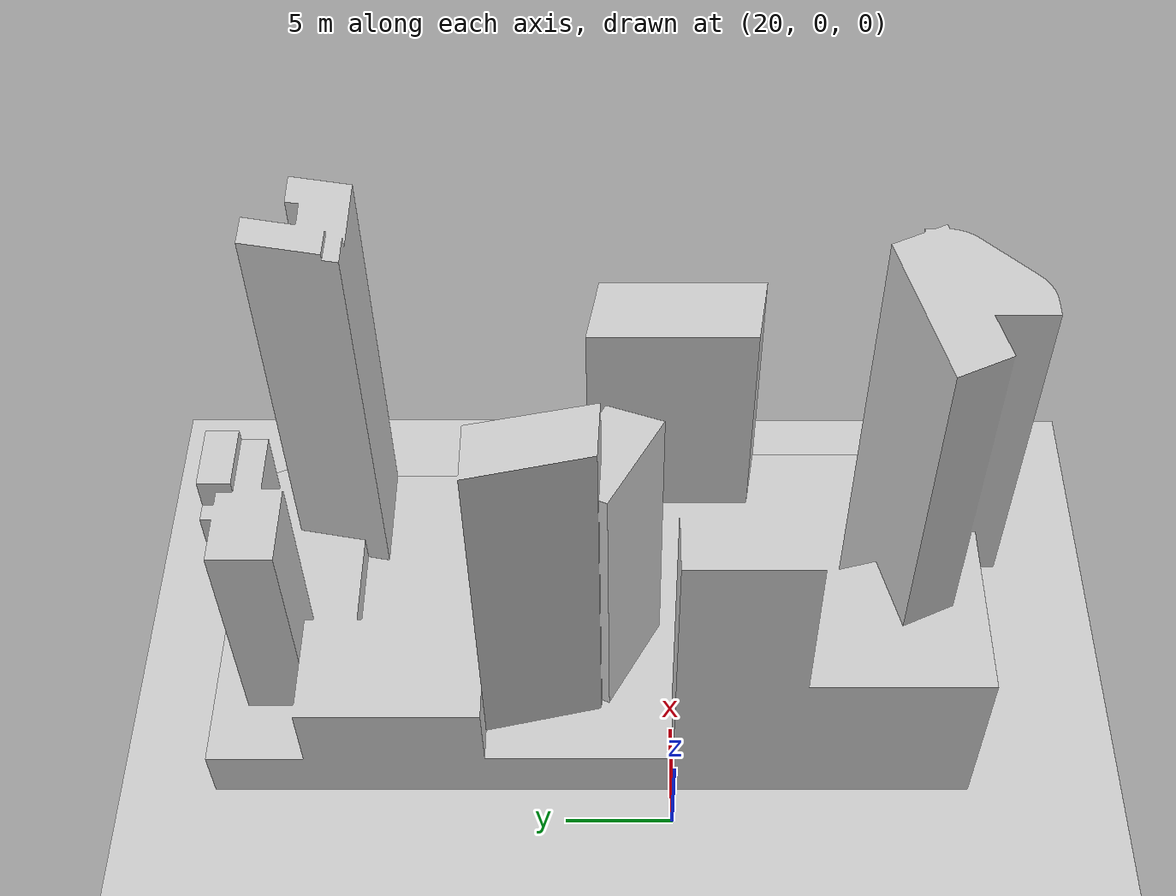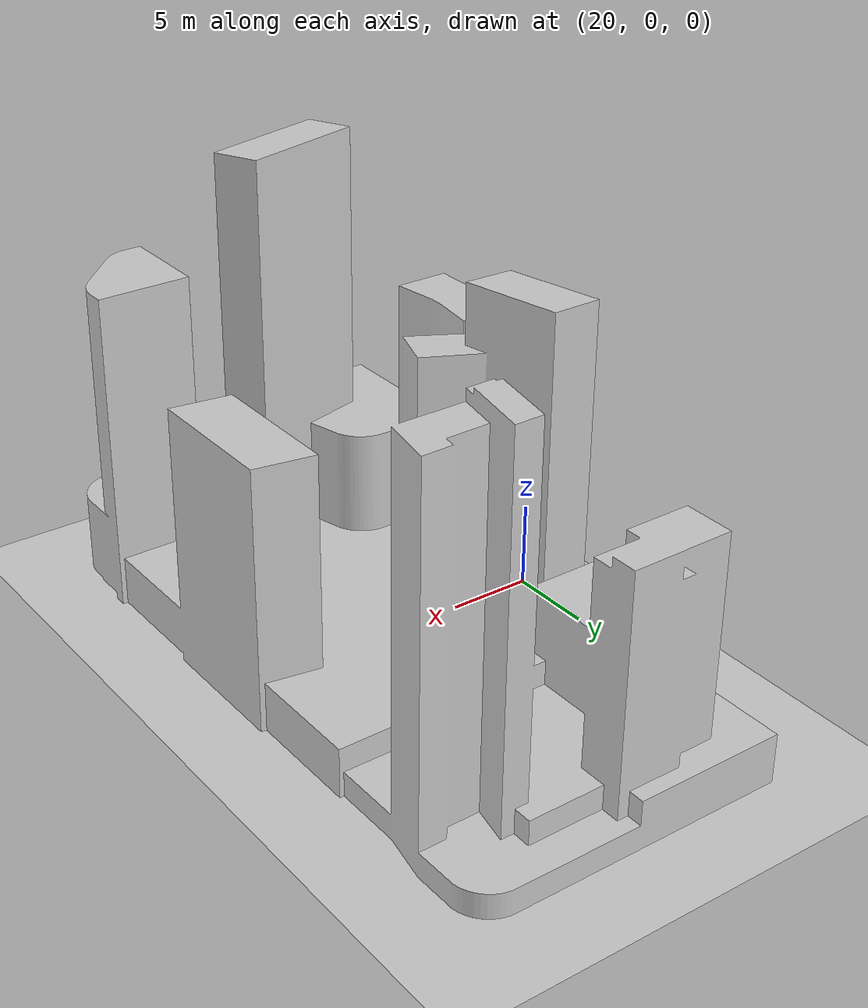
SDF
<sdf version='1.10'>
  <world name='test_2_world'>
    <physics type='ode'>
      <max_step_size>0.002</max_step_size>
      <real_time_factor>1</real_time_factor>
      <real_time_update_rate>1000</real_time_update_rate>
    </physics>
    <plugin name='gz::sim::systems::Physics' filename='libgz-sim-physics-system.so'/>
    <plugin name='gz::sim::systems::UserCommands' filename='libgz-sim-user-commands-system.so'/>
    <plugin name='gz::sim::systems::SceneBroadcaster' filename='libgz-sim-scene-broadcaster-system.so'/>
    <plugin name='gz::sim::systems::Contact' filename='libgz-sim-contact-system.so'/>
    <plugin name='gz::sim::systems::Imu' filename='libgz-sim-imu-system.so'/>
    <plugin name='gz::sim::systems::AirPressure' filename='libgz-sim-air-pressure-system.so'/>
    <plugin name='gz::sim::systems::Sensors' filename='libgz-sim-sensors-system.so'>
      <render_engine>ogre2</render_engine>
    </plugin>
    <gravity>0 0 -9.8066499999999994</gravity>
    <magnetic_field>6.0000000000000002e-06 2.3e-05 -4.1999999999999998e-05</magnetic_field>
    <atmosphere type='adiabatic'/>
    <scene>
      <grid>false</grid>
      <ambient>0.400000006 0.400000006 0.400000006 1</ambient>
      <background>0.699999988 0.699999988 0.699999988 1</background>
      <shadows>true</shadows>
    </scene>
    <model name='ground_plane'>
      <pose>60 60 0 0 0 0</pose>
      <static>true</static>
      <link name='link'>
        <collision name='collision'>
          <geometry>
            <plane>
              <normal>0 0 1</normal>
              <size>150 150</size>
            </plane>
          </geometry>
          <surface>
            <friction>
              <ode/>
            </friction>
            <bounce/>
            <contact/>
          </surface>
        </collision>
        <visual name='visual'>
          <geometry>
            <plane>
              <normal>0 0 1</normal>
              <size>150 150</size>
            </plane>
          </geometry>
          <material>
            <ambient>0.800000012 0.800000012 0.800000012 1</ambient>
            <diffuse>0.800000012 0.800000012 0.800000012 1</diffuse>
            <specular>0.800000012 0.800000012 0.800000012 1</specular>
          </material>
        </visual>
        <pose>0 0 0 0 0 0</pose>
        <inertial>
          <pose>0 0 0 0 0 0</pose>
          <mass>1</mass>
          <inertia>
            <ixx>1</ixx>
            <ixy>0</ixy>
            <ixz>0</ixz>
            <iyy>1</iyy>
            <iyz>0</iyz>
            <izz>1</izz>
          </inertia>
        </inertial>
        <enable_wind>false</enable_wind>
      </link>
      <self_collide>false</self_collide>
    </model>
    <include>
      <uri>file:///root/CrazySim/ros2_ws/src/icuas25_competition/launch/../worlds/test_2</uri>
      <name>test_2</name>
      <pose>0 0 0 0 0 0</pose>
    </include>

    <light name='sun' type='directional'>
      <pose>0 0 100 0 0 0</pose>
      <cast_shadows>false</cast_shadows>
      <intensity>1</intensity>
      <direction>-0.5 0.10000000000000001 -0.90000000000000002</direction>
      <diffuse>0.800000012 0.800000012 0.800000012 1</diffuse>
      <specular>0.200000003 0.200000003 0.200000003 1</specular>
      <attenuation>
        <range>1000</range>
        <linear>0.01</linear>
        <constant>0.90000000000000002</constant>
        <quadratic>0.001</quadratic>
      </attenuation>
      <spot>
        <inner_angle>0</inner_angle>
        <outer_angle>0</outer_angle>
        <falloff>0</falloff>
      </spot>
    </light>
  </world>
</sdf>

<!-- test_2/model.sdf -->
<sdf version="1.9">
  <model name="test_1">
    <static>true</static>
    <link name="link">
      <collision name="collision">
        <geometry>
          <mesh>
            <uri>model://test_2/meshes/test_2.stl</uri>
          </mesh>
        </geometry>
      </collision>
      <visual name="visual">
        <geometry>
          <mesh>
            <uri>model://test_2/meshes/test_2.stl</uri>
          </mesh>
        </geometry>
        <material>
            <ambient>0.8 0.8 0.8 1</ambient>
            <diffuse>0.8 0.8 0.8 1</diffuse>
            <specular>0.8 0.8 0.8 1</specular>
        </material>
      </visual>
    </link>
  </model>
</sdf>
